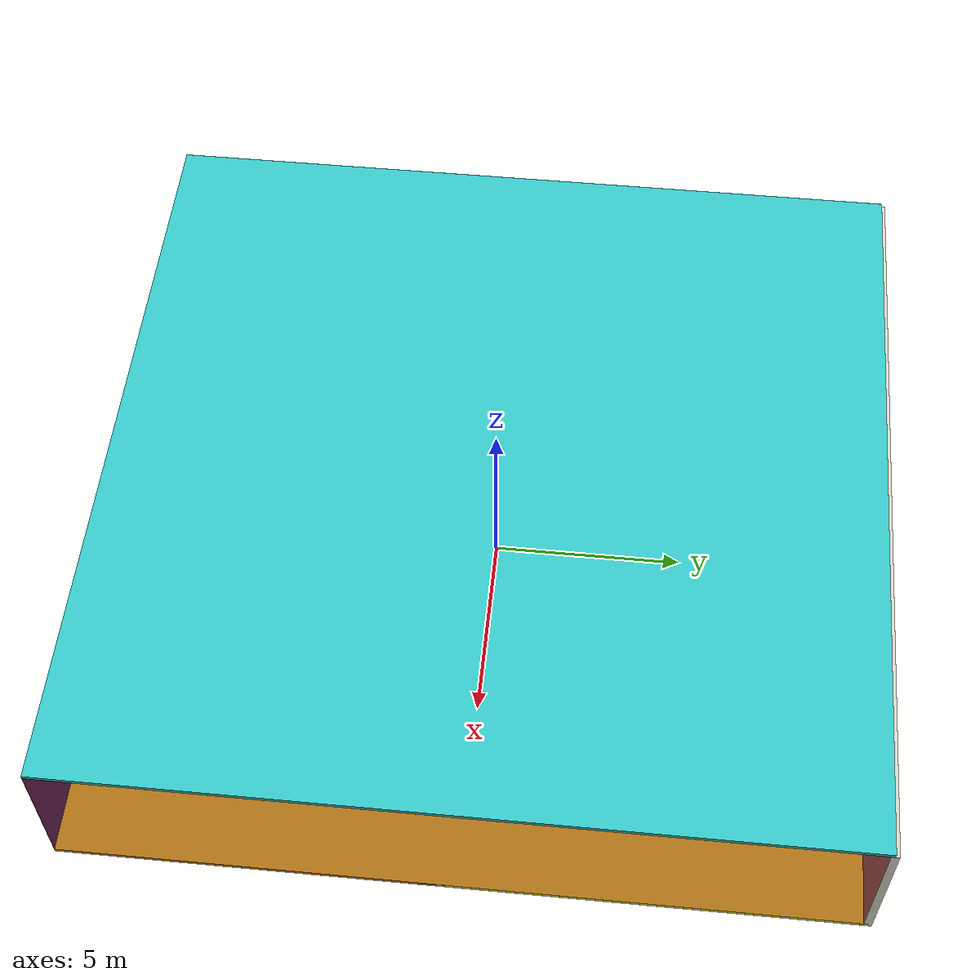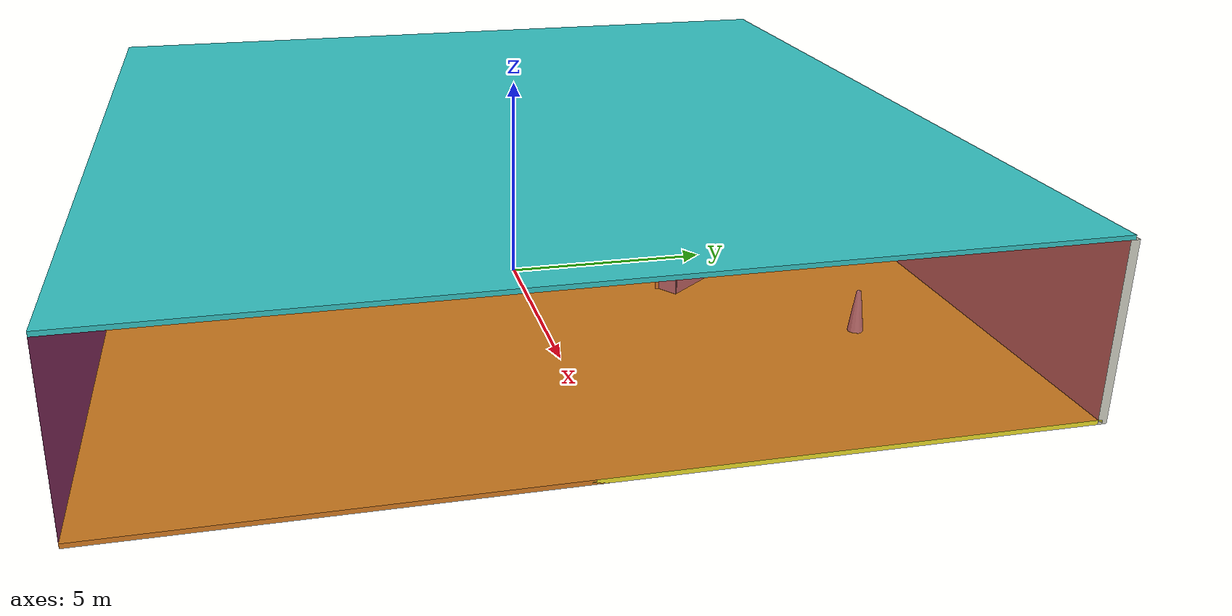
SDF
<sdf version="1.4">
 <world name="default">
  <physics type="ode">
   <max_step_size>0.001</max_step_size>
   <real_time_factor>1</real_time_factor>
   <real_time_update_rate>1000</real_time_update_rate>
   <gravity>0 0 -9.8</gravity>
  </physics>
  <scene><ambient>0.4 0.4 0.4 1</ambient><background>0.7 0.7 0.7 1</background><shadows>1</shadows></scene>
  <model name="Surrounding">
   <static>1</static>
   <link name="Ceiling">
    <collision name="Ceiling_Collision"><geometry><box><size>20 20 0.1</size></box></geometry></collision>
    <visual name="Ceiling_Visual">
     <geometry><box><size>20 20 0.1</size></box></geometry>
     <material>
      <script><uri>file://media/materials/scripts/gazebo.material</uri><name>Gazebo/TurquoiseGlow</name></script>
     </material>
    </visual>
    <pose>0 0 4.05 0 0 0</pose>
   </link>
   <link name="Wall_South">
    <collision name="Wall_South_Collision">
     <geometry><box><size>20 0 4</size></box></geometry>
     <pose>0 0 2 0 -0 0</pose>
    </collision>
    <visual name="Wall_South_Visual">
     <pose>0 0 2 0 -0 0</pose>
     <geometry><box><size>20 0 4</size></box></geometry>
     <material>
      <script><uri>file://media/materials/scripts/gazebo.material</uri><name>Gazebo/BlueLaser</name></script>
     </material>
    </visual>
    <velocity_decay><linear>0</linear><angular>0</angular></velocity_decay>
    <pose>0 -10 0 0 -0 0</pose>
   </link>
   <link name="Wall_East">
    <collision name="Wall_21_Collision">
     <geometry><box><size>20 0 4</size></box></geometry>
     <pose>0 0 2 0 -0 0</pose>
    </collision>
    <visual name="Wall_21_Visual">
     <pose>0 0 2 0 -0 0</pose>
     <geometry><box><size>20 0 4</size></box></geometry>
     <material>
      <script><uri>file://media/materials/scripts/gazebo.material</uri><name>Gazebo/RedTransparent</name></script>
     </material>
    </visual>
    <velocity_decay><linear>0</linear><angular>0</angular></velocity_decay>
    <pose>10 0 0 0 -0 1.5708</pose>
   </link>
   <link name="Wall_North">
    <collision name="Wall_22_Collision">
     <geometry><box><size>20 0.2 4</size></box></geometry>
     <pose>0 0 2 0 -0 0</pose>
    </collision>
    <visual name="Wall_22_Visual">
     <pose>0 0 2 0 -0 0</pose>
     <geometry><box><size>20 0.2 4</size></box></geometry>
     <material>
      <script><uri>file://media/materials/scripts/gazebo.material</uri><name>Gazebo/PaintedWall</name></script>
     </material>
    </visual>
    <velocity_decay><linear>0</linear><angular>0</angular></velocity_decay>
    <pose>0 10 0 0 -0 0</pose>
   </link>
   <link name="Wall_West">
    <collision name="Wall_23_Collision">
     <geometry><box><size>20 0.2 4</size></box></geometry>
     <pose>0 0 2 0 -0 0</pose>
    </collision>
    <visual name="Wall_23_Visual">
     <pose>0 0 2 0 -0 0</pose>
     <geometry><box><size>20 0.2 4</size></box></geometry>
     <material>
      <script><uri>file://media/materials/scripts/gazebo.material</uri><name>Gazebo/PioneerBody</name></script>
     </material>
    </visual>
    <velocity_decay><linear>0</linear><angular>0</angular></velocity_decay>
    <pose>-10 0 0 0 0 -1.5708</pose>
   </link>
   <link name="Ground_link">
    <collision name="collision">
     <pose>0 0 .05 0 -0 0</pose>
     <geometry><box><size>20 20 0.1</size></box></geometry>
    </collision>
    <visual name="visual">
     <pose>0 0 .05 0 -0 0</pose>
     <geometry><box><size>20 20 0.1</size></box></geometry>
     <material>
      <script><uri>file://media/materials/scripts/gazebo.material</uri><name>Gazebo/Yellow</name></script>
     </material>
    </visual>
   </link>
   <static>1</static>
  </model>
  <spherical_coordinates>
   <surface_model>EARTH_WGS84</surface_model>
   <latitude_deg>0</latitude_deg>
   <longitude_deg>0</longitude_deg>
   <elevation>0</elevation>
   <heading_deg>0</heading_deg>
  </spherical_coordinates>
  <light name="lightball_0" type="diffuse">
   <diffuse>0.8 0.8 0.8 1</diffuse>
   <specular>0.2 0.2 0.2 1</specular>
   <attenuation>
    <range>100</range>
    <constant>0.7</constant>
    <linear>0.01</linear>
    <quadratic>0.001</quadratic>
   </attenuation>
   <direction>-0.5 0.1 -0.9</direction>
   <pose>6.85741745526 8.51673544921 3.00770288687 0 0 0</pose>
  </light>
  <light name="lightball_1" type="diffuse">
   <diffuse>0.8 0.8 0.8 1</diffuse>
   <specular>0.2 0.2 0.2 1</specular>
   <attenuation>
    <range>100</range>
    <constant>0.7</constant>
    <linear>0.01</linear>
    <quadratic>0.001</quadratic>
   </attenuation>
   <direction>-0.5 0.1 -0.9</direction>
   <pose>-6.4790576707 9.94832400356 2.11194975734 0 0 0</pose>
  </light>
  <light name="lightball_2" type="diffuse">
   <diffuse>0.8 0.8 0.8 1</diffuse>
   <specular>0.2 0.2 0.2 1</specular>
   <attenuation>
    <range>100</range>
    <constant>0.7</constant>
    <linear>0.01</linear>
    <quadratic>0.001</quadratic>
   </attenuation>
   <direction>-0.5 0.1 -0.9</direction>
   <pose>-9.08134243829 6.51148053591 1.31893894002 0 0 0</pose>
  </light>
  <light name="lightball_3" type="diffuse">
   <diffuse>0.8 0.8 0.8 1</diffuse>
   <specular>0.2 0.2 0.2 1</specular>
   <attenuation>
    <range>100</range>
    <constant>0.7</constant>
    <linear>0.01</linear>
    <quadratic>0.001</quadratic>
   </attenuation>
   <direction>-0.5 0.1 -0.9</direction>
   <pose>-8.30339498859 0.983282212043 2.03754718178 0 0 0</pose>
  </light>
  <light name="lightball_4" type="diffuse">
   <diffuse>0.8 0.8 0.8 1</diffuse>
   <specular>0.2 0.2 0.2 1</specular>
   <attenuation>
    <range>100</range>
    <constant>0.7</constant>
    <linear>0.01</linear>
    <quadratic>0.001</quadratic>
   </attenuation>
   <direction>-0.5 0.1 -0.9</direction>
   <pose>-6.548900645 3.72542247387 3.6364034031 0 0 0</pose>
  </light>
  <light name="lightball_5" type="diffuse">
   <diffuse>0.8 0.8 0.8 1</diffuse>
   <specular>0.2 0.2 0.2 1</specular>
   <attenuation>
    <range>100</range>
    <constant>0.7</constant>
    <linear>0.01</linear>
    <quadratic>0.001</quadratic>
   </attenuation>
   <direction>-0.5 0.1 -0.9</direction>
   <pose>1.64699234621 -1.13637568774 1.3957698683 0 0 0</pose>
  </light>
  <light name="lightball_6" type="diffuse">
   <diffuse>0.8 0.8 0.8 1</diffuse>
   <specular>0.2 0.2 0.2 1</specular>
   <attenuation>
    <range>100</range>
    <constant>0.7</constant>
    <linear>0.01</linear>
    <quadratic>0.001</quadratic>
   </attenuation>
   <direction>-0.5 0.1 -0.9</direction>
   <pose>-9.82801808143 -0.48206214993 3.4647166119 0 0 0</pose>
  </light>
  <light name="lightball_7" type="diffuse">
   <diffuse>0.8 0.8 0.8 1</diffuse>
   <specular>0.2 0.2 0.2 1</specular>
   <attenuation>
    <range>100</range>
    <constant>0.7</constant>
    <linear>0.01</linear>
    <quadratic>0.001</quadratic>
   </attenuation>
   <direction>-0.5 0.1 -0.9</direction>
   <pose>3.59994266517 -4.0482091076 1.4968087354 0 0 0</pose>
  </light>
  <light name="lightball_8" type="diffuse">
   <diffuse>0.8 0.8 0.8 1</diffuse>
   <specular>0.2 0.2 0.2 1</specular>
   <attenuation>
    <range>100</range>
    <constant>0.7</constant>
    <linear>0.01</linear>
    <quadratic>0.001</quadratic>
   </attenuation>
   <direction>-0.5 0.1 -0.9</direction>
   <pose>6.6139386348 -8.74466212773 1.41295302488 0 0 0</pose>
  </light>
  <light name="lightball_9" type="diffuse">
   <diffuse>0.8 0.8 0.8 1</diffuse>
   <specular>0.2 0.2 0.2 1</specular>
   <attenuation>
    <range>100</range>
    <constant>0.7</constant>
    <linear>0.01</linear>
    <quadratic>0.001</quadratic>
   </attenuation>
   <direction>-0.5 0.1 -0.9</direction>
   <pose>-9.19351943107 -3.85981902432 2.95722186649 0 0 0</pose>
  </light>
  <include>
   <uri>model://textured_shapes</uri>
   <pose>-7.02160880735 1.21474892429 0 0 0 0.129914040967</pose>
  </include>
  <include>
   <uri>model://robocup_3Dsim_goal</uri>
   <pose>-7.57325374915 4.347043252 0 0 0 1.08589559748</pose>
  </include>
  <include><uri>model://cabinet</uri><pose>-4.76000117817 -7.25720631107 0 0 0 1.03210085837</pose></include>
  <include><uri>model://table</uri><pose>-3.98993188826 -1.80232981678 0 0 0 1.88507114439</pose></include>
  <include>
   <uri>model://textured_shapes</uri>
   <pose>-1.57662903886 -7.88542637797 0 0 0 3.11209699242</pose>
  </include>
  <include>
   <uri>model://construction_cone</uri>
   <pose>-1.41030023129 -5.17628591247 0 0 0 1.35565028824</pose>
  </include>
  <include>
   <uri>model://robocup_3Dsim_goal</uri>
   <pose>-1.24061566207 5.25855546261 0 0 0 2.44324813763</pose>
  </include>
  <include>
   <uri>model://robocup_3Dsim_goal</uri>
   <pose>1.387179797 4.05994704247 0 0 0 0.646573656438</pose>
  </include>
  <include>
   <uri>model://construction_cone</uri>
   <pose>5.22497823931 6.97874594157 0 0 0 1.09062274024</pose>
  </include>
 </world>
</sdf>

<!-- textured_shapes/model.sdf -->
<sdf version="1.6">
  <model name="textured_shapes">
    <pose>0 0 0.5 0 0 0</pose>
    <link name="box">
      <pose>0 -1.5 0 0 0 0</pose>
      <collision name="collision">
        <geometry>
          <box>
            <size>1 1 1</size>
          </box>
        </geometry>
      </collision>
      <visual name="visual">
        <geometry>
          <box>
            <size>1 1 1</size>
          </box>
        </geometry>
        <material>
          <script>
            <uri>model://../model_source/models/textured_shapes/materials/scripts</uri>
            <uri>model://../model_source/models/textured_shapes/materials/textures</uri>
            <name>TexturedShape/Squares</name>
          </script>
        </material>
      </visual>
    </link>
    <link name="sphere">
      <collision name="collision">
        <geometry>
          <sphere>
            <radius>0.5</radius>
          </sphere>
        </geometry>
      </collision>
      <visual name="visual">
        <geometry>
          <sphere>
            <radius>0.5</radius>
          </sphere>
        </geometry>
        <material>
          <script>
            <uri>model://../model_source/models/textured_shapes/materials/scripts</uri>
            <uri>model://../model_source/models/textured_shapes/materials/textures</uri>
            <name>TexturedShape/Squares</name>
          </script>
        </material>
      </visual>
    </link>
    <link name="cylinder">
      <pose>0 1.5 0 0 0 0</pose>
      <collision name="collision">
        <geometry>
          <cylinder>
            <radius>0.5</radius>
            <length>1</length>
          </cylinder>
        </geometry>
      </collision>
      <visual name="visual">
        <geometry>
          <cylinder>
            <radius>0.5</radius>
            <length>1</length>
          </cylinder>
        </geometry>
        <material>
          <script>
            <uri>model://../model_source/models/textured_shapes/materials/scripts</uri>
            <uri>model://../model_source/models/textured_shapes/materials/textures</uri>
            <name>TexturedShape/Squares</name>
          </script>
        </material>
      </visual>
    </link>
  </model>
</sdf>

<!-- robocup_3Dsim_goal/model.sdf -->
<sdf version="1.5">
  <model name="robocup_3d_goal">
    <static>true</static>
    <link name="left_post">
      <pose>0 1.05 0.45 0 0 0</pose>
      <collision name="collision">
        <geometry>
          <cylinder>
            <radius>0.05</radius>
            <length>0.9</length>
          </cylinder>
        </geometry>
      </collision>
      <visual name="visual">
        <geometry>
          <cylinder>
            <radius>0.05</radius>
            <length>0.9</length>
          </cylinder>
        </geometry>
        <material>
          <script>
            <uri>file://media/materials/scripts/gazebo.material</uri>
            <name>Gazebo/ZincYellow</name>
          </script>
        </material>
      </visual>
    </link>
    <link name="left_support_horiz_lower">
      <pose>0.30 1.05 0.01 0 0 0</pose>
      <collision name="collision">
        <geometry>
          <box>
            <size>0.50 0.02 0.02</size>
          </box>
        </geometry>
      </collision>
      <visual name="visual">
        <geometry>
          <box>
            <size>0.50 0.02 0.02</size>
          </box>
        </geometry>
        <material>
          <script>
            <uri>file://media/materials/scripts/gazebo.material</uri>
            <name>Gazebo/White</name>
          </script>
        </material>
      </visual>
    </link>
    <link name="left_support_horiz_upper">
      <pose>0.30 1.05 0.79 0 0 0</pose>
      <collision name="collision">
        <geometry>
          <box>
            <size>0.50 0.02 0.02</size>
          </box>
        </geometry>
      </collision>
      <visual name="visual">
        <geometry>
          <box>
            <size>0.50 0.02 0.02</size>
          </box>
        </geometry>
        <material>
          <script>
            <uri>file://media/materials/scripts/gazebo.material</uri>
            <name>Gazebo/White</name>
          </script>
        </material>
      </visual>
    </link>
    <link name="left_support_vertical">
      <pose>0.56 1.05 0.4 0 1.5708 0</pose>
      <collision name="collision">
        <geometry>
          <box>
            <size>0.80 0.02 0.02</size>
          </box>
        </geometry>
      </collision>
      <visual name="visual">
        <geometry>
          <box>
            <size>0.80 0.02 0.02</size>
          </box>
        </geometry>
        <material>
          <script>
            <uri>file://media/materials/scripts/gazebo.material</uri>
            <name>Gazebo/White</name>
          </script>
        </material>
      </visual>
    </link>
    <link name="right_support_horiz_lower">
      <pose>0.30 -1.05 0.01 0 0 0</pose>
      <collision name="collision">
        <geometry>
          <box>
            <size>0.50 0.02 0.02</size>
          </box>
        </geometry>
      </collision>
      <visual name="visual">
        <geometry>
          <box>
            <size>0.50 0.02 0.02</size>
          </box>
        </geometry>
        <material>
          <script>
            <uri>file://media/materials/scripts/gazebo.material</uri>
            <name>Gazebo/White</name>
          </script>
        </material>
      </visual>
    </link>
    <link name="right_support_horiz_upper">
      <pose>0.30 -1.05 0.79 0 0 0</pose>
      <collision name="collision">
        <geometry>
          <box>
            <size>0.50 0.02 0.02</size>
          </box>
        </geometry>
      </collision>
      <visual name="visual">
        <geometry>
          <box>
            <size>0.50 0.02 0.02</size>
          </box>
        </geometry>
        <material>
          <script>
            <uri>file://media/materials/scripts/gazebo.material</uri>
            <name>Gazebo/White</name>
          </script>
        </material>
      </visual>
    </link>
    <link name="right_support_vertical">
      <pose>0.56 -1.05 0.4 0 1.5708 0</pose>
      <collision name="collision">
        <geometry>
          <box>
            <size>0.80 0.02 0.02</size>
          </box>
        </geometry>
      </collision>
      <visual name="visual">
        <geometry>
          <box>
            <size>0.80 0.02 0.02</size>
          </box>
        </geometry>
        <material>
          <script>
            <uri>file://media/materials/scripts/gazebo.material</uri>
            <name>Gazebo/White</name>
          </script>
        </material>
      </visual>
    </link>
    <link name="center_support_horiz_lower">
      <pose>0.56 0 0.01 0 1.5708 0</pose>
      <collision name="collision">
        <geometry>
          <box>
            <size>0.02 2.08 0.02</size>
          </box>
        </geometry>
      </collision>
      <visual name="visual">
        <geometry>
          <box>
            <size>0.02 2.08 0.02</size>
          </box>
        </geometry>
        <material>
          <script>
            <uri>file://media/materials/scripts/gazebo.material</uri>
            <name>Gazebo/White</name>
          </script>
        </material>
      </visual>
    </link>
    <link name="center_support_horiz_upper">
      <pose>0.56 0 0.79 0 1.5708 0</pose>
      <collision name="collision">
        <geometry>
          <box>
            <size>0.02 2.08 0.02</size>
          </box>
        </geometry>
      </collision>
      <visual name="visual">
        <geometry>
          <box>
            <size>0.02 2.08 0.02</size>
          </box>
        </geometry>
        <material>
          <script>
            <uri>file://media/materials/scripts/gazebo.material</uri>
            <name>Gazebo/White</name>
          </script>
        </material>
      </visual>
    </link>
    <link name="right_post">
      <pose>0 -1.05 0.45 0 0 0</pose>
      <collision name="collision">
        <geometry>
          <cylinder>
            <radius>0.05</radius>
            <length>0.9</length>
          </cylinder>
        </geometry>
      </collision>
      <visual name="visual">
        <geometry>
          <cylinder>
            <radius>0.05</radius>
            <length>0.9</length>
          </cylinder>
        </geometry>
        <material>
          <script>
            <uri>file://media/materials/scripts/gazebo.material</uri>
            <name>Gazebo/ZincYellow</name>
          </script>
        </material>
      </visual>
    </link>
    <link name="crossbar">
      <pose>0 0 0.85 1.57 1.57 0</pose>
      <collision name="collision">
        <geometry>
          <cylinder>
            <radius>0.05</radius>
            <length>2.0</length>
          </cylinder>
        </geometry>
      </collision>
      <visual name="visual">
        <geometry>
          <cylinder>
            <radius>0.05</radius>
            <length>2.0</length>
          </cylinder>
        </geometry>
        <material>
          <script>
            <uri>file://media/materials/scripts/gazebo.material</uri>
            <name>Gazebo/ZincYellow</name>
          </script>
        </material>
      </visual>
    </link>
    <link name="center_net">
      <pose>0.56 0 0.40 0 0 0</pose>
      <collision name="collision">
        <geometry>
          <box>
            <size>0.01 2.1 0.80</size>
          </box>
        </geometry>
      </collision>
      <visual name="visual">
        <geometry>
          <box>
            <size>0.01 2.1 0.80</size>
          </box>
        </geometry>
        <material>
          <script>
            <uri>model://../model_source/models/robocup09_spl_field/materials/scripts/</uri>
            <uri>model://../model_source/models/robocup09_spl_field/materials/textures/</uri>
            <name>RoboCup/Net</name>
          </script>
        </material>
      </visual>
    </link>
    <link name="left_net">
      <pose>0.30 1.05 0.40 0 0 0</pose>
      <collision name="collision">
        <geometry>
          <box>
            <size>0.50 0.01 0.76</size>
          </box>
        </geometry>
      </collision>
      <visual name="visual">
        <geometry>
          <box>
            <size>0.50 0.01 0.76</size>
          </box>
        </geometry>
        <material>
          <script>
            <uri>model://../model_source/models/robocup09_spl_field/materials/scripts/</uri>
            <uri>model://../model_source/models/robocup09_spl_field/materials/textures/</uri>
            <name>RoboCup/Net</name>
          </script>
        </material>
      </visual>
    </link>
    <link name="right_net">
      <pose>0.30 -1.05 0.40 0 0 0</pose>
      <collision name="collision">
        <geometry>
          <box>
            <size>0.50 0.01 0.76</size>
          </box>
        </geometry>
      </collision>
      <visual name="visual">
        <geometry>
          <box>
            <size>0.50 0.01 0.76</size>
          </box>
        </geometry>
        <material>
          <script>
            <uri>model://../model_source/models/robocup09_spl_field/materials/scripts/</uri>
            <uri>model://../model_source/models/robocup09_spl_field/materials/textures/</uri>
            <name>RoboCup/Net</name>
          </script>
        </material>
      </visual>
    </link>
  </model>
</sdf>

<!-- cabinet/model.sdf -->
<sdf version="1.5">
  <model name="cabinet">
    <static>true</static>
    <link name="cabinet_bottom_plate">
      <inertial>
        <pose>0 0 -1 0 0 0</pose>
        <inertia>
          <ixx>2.050000</ixx>
          <ixy>0</ixy>
          <ixz>0</ixz>
          <iyy>2.050000</iyy>
          <iyz>0</iyz>
          <izz>2.050000</izz>
        </inertia>
        <mass>25.000000</mass>
      </inertial>
      <collision name="cabinet_bottom_plate_geom">
        <pose>0 0 0.010000 0 0 0</pose>
        <geometry>
          <box>
            <size>0.450000 0.450000 0.020000</size>
          </box>
        </geometry>
      </collision>
      <visual name="cabinet_bottom_plate_geom_visual">
        <pose>0 0 0.010000 0 0 0</pose>
        <geometry>
          <box>
            <size>0.450000 0.450000 0.020000</size>
          </box>
        </geometry>
        <material>
          <script>
            <uri>model://media/materials/scripts/gazebo.material</uri>
            <name>Gazebo/Wood</name>
          </script>
        </material>
      </visual>
      <collision name="cabinet_bottom_plate_geom_cabinet_back_plate">
        <pose>0.235000 0 0.510000 0 0 0</pose>
        <geometry>
          <box>
            <size>0.020000 0.450000 1.020000</size>
          </box>
        </geometry>
      </collision>
      <visual name="cabinet_bottom_plate_geom_cabinet_back_plate_visual">
        <pose>0.235000 0 0.510000 0 0 0</pose>
        <geometry>
          <box>
            <size>0.020000 0.450000 1.020000</size>
          </box>
        </geometry>
        <material>
          <script>
            <uri>model://media/materials/scripts/gazebo.material</uri>
            <name>Gazebo/Wood</name>
          </script>
        </material>
      </visual>
      <collision name="cabinet_bottom_plate_geom_cabinet_left_plate">
        <pose>0 0.235000 0.510000 0 0 0</pose>
        <geometry>
          <box>
            <size>0.450000 0.020000 1.020000</size>
          </box>
        </geometry>
      </collision>
      <visual name="cabinet_bottom_plate_geom_cabinet_left_plate_visual">
        <pose>0 0.235000 0.510000 0 0 0</pose>
        <geometry>
          <box>
            <size>0.450000 0.020000 1.020000</size>
          </box>
        </geometry>
        <material>
          <script>
            <uri>model://media/materials/scripts/gazebo.material</uri>
            <name>Gazebo/Wood</name>
          </script>
        </material>
      </visual>
      <collision name="cabinet_bottom_plate_geom_cabinet_middle_plate">
        <pose>0 0 0.510000 0 0 0</pose>
        <geometry>
          <box>
            <size>0.450000 0.450000 0.020000</size>
          </box>
        </geometry>
      </collision>
      <visual name="cabinet_bottom_plate_geom_cabinet_middle_plate_visual">
        <pose>0 0 0.510000 0 0 0</pose>
        <geometry>
          <box>
            <size>0.450000 0.450000 0.020000</size>
          </box>
        </geometry>
        <material>
          <script>
            <uri>model://media/materials/scripts/gazebo.material</uri>
            <name>Gazebo/Wood</name>
          </script>
        </material>
      </visual>
      <collision name="cabinet_bottom_plate_geom_cabinet_right_plate">
        <pose>0 -0.235000 0.510000 0 0 0</pose>
        <geometry>
          <box>
            <size>0.450000 0.020000 1.020000</size>
          </box>
        </geometry>
      </collision>
      <visual name="cabinet_bottom_plate_geom_cabinet_right_plate_visual">
        <pose>0 -0.235000 0.510000 0 0 0</pose>
        <geometry>
          <box>
            <size>0.450000 0.020000 1.020000</size>
          </box>
        </geometry>
        <material>
          <script>
            <uri>model://media/materials/scripts/gazebo.material</uri>
            <name>Gazebo/Wood</name>
          </script>
        </material>
      </visual>
      <collision name="cabinet_bottom_plate_geom_cabinet_top_plate">
        <pose>0 0 1.010000 0 0 0</pose>
        <geometry>
          <box>
            <size>0.450000 0.450000 0.020000</size>
          </box>
        </geometry>
      </collision>
      <visual name="cabinet_bottom_plate_geom_cabinet_top_plate_visual">
        <pose>0 0 1.010000 0 0 0</pose>
        <geometry>
          <box>
            <size>0.450000 0.450000 0.020000</size>
          </box>
        </geometry>
        <material>
          <script>
            <uri>model://media/materials/scripts/gazebo.material</uri>
            <name>Gazebo/Wood</name>
          </script>
        </material>
      </visual>
    </link>
  </model>
</sdf>

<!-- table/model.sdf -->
<sdf version="1.5">
  <model name="table">
    <static>true</static>
    <link name="link">
      <collision name="surface">
        <pose>0 0 1.0 0 0 0</pose>
        <geometry>
          <box>
            <size>1.5 0.8 0.03</size>
          </box>
        </geometry>
        <surface>
          <friction>
            <ode>
              <mu>0.6</mu>
              <mu2>0.6</mu2>
            </ode>
          </friction>
        </surface>
      </collision>
      <visual name="visual1">
        <pose>0 0 1.0 0 0 0</pose>
        <geometry>
          <box>
            <size>1.5 0.8 0.03</size>
          </box>
        </geometry>
        <material>
          <script>
            <uri>model://media/materials/scripts/gazebo.material</uri>
            <name>Gazebo/Wood</name>
          </script>
        </material>
      </visual>
      <collision name="front_left_leg">
        <pose>0.68 0.38 0.5 0 0 0</pose>
        <geometry>
          <cylinder>
            <radius>0.02</radius>
            <length>1.0</length>
          </cylinder>
        </geometry>
      </collision>
      <visual name="front_left_leg">
        <pose>0.68 0.38 0.5 0 0 0</pose>
        <geometry>
          <cylinder>
            <radius>0.02</radius>
            <length>1.0</length>
          </cylinder>
        </geometry>
        <material>
          <script>
            <uri>model://media/materials/scripts/gazebo.material</uri>
            <name>Gazebo/Grey</name>
          </script>
        </material>
      </visual>
      <collision name="front_right_leg">
        <pose>0.68 -0.38 0.5 0 0 0</pose>
        <geometry>
          <cylinder>
            <radius>0.02</radius>
            <length>1.0</length>
          </cylinder>
        </geometry>
      </collision>
      <visual name="front_right_leg">
        <pose>0.68 -0.38 0.5 0 0 0</pose>
        <geometry>
          <cylinder>
            <radius>0.02</radius>
            <length>1.0</length>
          </cylinder>
        </geometry>
        <material>
          <script>
            <uri>model://media/materials/scripts/gazebo.material</uri>
            <name>Gazebo/Grey</name>
          </script>
        </material>
      </visual>
      <collision name="back_right_leg">
        <pose>-0.68 -0.38 0.5 0 0 0</pose>
        <geometry>
          <cylinder>
            <radius>0.02</radius>
            <length>1.0</length>
          </cylinder>
        </geometry>
      </collision>
      <visual name="back_right_leg">
        <pose>-0.68 -0.38 0.5 0 0 0</pose>
        <geometry>
          <cylinder>
            <radius>0.02</radius>
            <length>1.0</length>
          </cylinder>
        </geometry>
        <material>
          <script>
            <uri>model://media/materials/scripts/gazebo.material</uri>
            <name>Gazebo/Grey</name>
          </script>
        </material>
      </visual>
      <collision name="back_left_leg">
        <pose>-0.68 0.38 0.5 0 0 0</pose>
        <geometry>
          <cylinder>
            <radius>0.02</radius>
            <length>1.0</length>
          </cylinder>
        </geometry>
      </collision>
      <visual name="back_left_leg">
        <pose>-0.68 0.38 0.5 0 0 0</pose>
        <geometry>
          <cylinder>
            <radius>0.02</radius>
            <length>1.0</length>
          </cylinder>
        </geometry>
        <material>
          <script>
            <uri>model://media/materials/scripts/gazebo.material</uri>
            <name>Gazebo/Grey</name>
          </script>
        </material>
      </visual>
    </link>
  </model>
</sdf>

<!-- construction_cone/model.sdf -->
<sdf version="1.5">
  <model name="Construction Cone">
    <link name="link">
      <collision name="collision">
        <geometry>
          <mesh>
            <scale>10 10 10</scale>
            <uri>file://isr-testbed/construction_cone/meshes/construction_cone.dae</uri>
          </mesh>
        </geometry>
      </collision>
      <visual name="visual">
        <geometry>
          <mesh>
            <scale>10 10 10</scale>
            <uri>file://isr-testbed/construction_cone/meshes/construction_cone.dae</uri>
          </mesh>
        </geometry>
      </visual>
    </link>
  </model>
</sdf>
